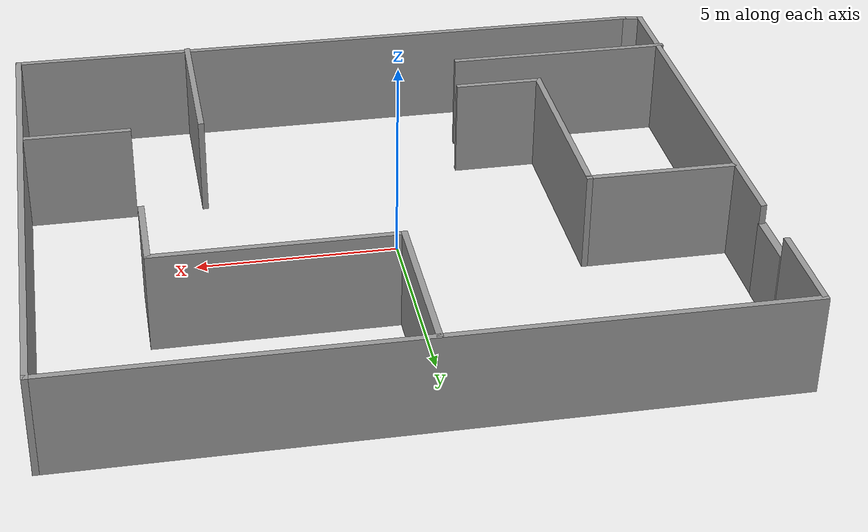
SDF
<?xml version='1.0'?>
<sdf version='1.6'>
  <model name='my_office'>
    <pose frame=''>0.443231 0.190933 0 0 -0 0</pose>
    <link name='Door_0'>
      <collision name='Door_0_Collision'>
        <geometry>
          <box>
            <size>1.46806 0.2 2</size>
          </box>
        </geometry>
        <pose frame=''>0 0 1 0 -0 0</pose>
      </collision>
      <visual name='Door_0_Visual'>
        <pose frame=''>0 0 1 0 -0 0</pose>
        <geometry>
          <box>
            <size>1.46806 0.2 2</size>
          </box>
        </geometry>
        <material>
          <script>
            <uri>file://media/materials/scripts/gazebo.material</uri>
            <name>Gazebo/Grey</name>
          </script>
        </material>
      </visual>
      <pose frame=''>-8.525 3.93257 0 0 0 -1.56325</pose>
    </link>
    <link name='Wall_10'>
      <collision name='Wall_10_Collision'>
        <geometry>
          <box>
            <size>10.25 0.15 2.5</size>
          </box>
        </geometry>
        <pose frame=''>0 0 1.25 0 -0 0</pose>
      </collision>
      <visual name='Wall_10_Visual'>
        <pose frame=''>0 0 1.25 0 -0 0</pose>
        <geometry>
          <box>
            <size>10.25 0.15 2.5</size>
          </box>
        </geometry>
        <material>
          <script>
            <uri>file://media/materials/scripts/gazebo.material</uri>
            <name>Gazebo/Grey</name>
          </script>
          <ambient>1 1 1 1</ambient>
        </material>
        <meta>
          <layer>0</layer>
        </meta>
      </visual>
      <pose frame=''>-8.50225 -1.88743 0 0 -0 1.5708</pose>
    </link>
    <link name='Wall_14'>
      <collision name='Wall_14_Collision'>
        <geometry>
          <box>
            <size>0.62569 0.15 2.5</size>
          </box>
        </geometry>
        <pose frame=''>0 0 1.25 0 -0 0</pose>
      </collision>
      <visual name='Wall_14_Visual'>
        <pose frame=''>0 0 1.25 0 -0 0</pose>
        <geometry>
          <box>
            <size>0.62569 0.15 2.5</size>
          </box>
        </geometry>
        <material>
          <script>
            <uri>file://media/materials/scripts/gazebo.material</uri>
            <name>Gazebo/Grey</name>
          </script>
          <ambient>1 1 1 1</ambient>
        </material>
        <meta>
          <layer>0</layer>
        </meta>
      </visual>
      <pose frame=''>-8.26774 -6.97711 0 0 -0 2.974</pose>
    </link>
    <link name='Wall_16'>
      <collision name='Wall_16_Collision'>
        <geometry>
          <box>
            <size>4.25 0.15 2.5</size>
          </box>
        </geometry>
        <pose frame=''>0 0 1.25 0 -0 0</pose>
      </collision>
      <visual name='Wall_16_Visual'>
        <pose frame=''>0 0 1.25 0 -0 0</pose>
        <geometry>
          <box>
            <size>4.25 0.15 2.5</size>
          </box>
        </geometry>
        <material>
          <script>
            <uri>file://media/materials/scripts/gazebo.material</uri>
            <name>Gazebo/Grey</name>
          </script>
          <ambient>1 1 1 1</ambient>
        </material>
        <meta>
          <layer>0</layer>
        </meta>
      </visual>
      <pose frame=''>4.08226 -5.03322 0 0 -0 1.5708</pose>
    </link>
    <link name='Wall_19'>
      <collision name='Wall_19_Collision'>
        <geometry>
          <box>
            <size>2.75 0.15 2.5</size>
          </box>
        </geometry>
        <pose frame=''>0 0 1.25 0 -0 0</pose>
      </collision>
      <visual name='Wall_19_Visual'>
        <pose frame=''>0 0 1.25 0 -0 0</pose>
        <geometry>
          <box>
            <size>2.75 0.15 2.5</size>
          </box>
        </geometry>
        <material>
          <script>
            <uri>file://media/materials/scripts/gazebo.material</uri>
            <name>Gazebo/Grey</name>
          </script>
          <ambient>1 1 1 1</ambient>
        </material>
        <meta>
          <layer>0</layer>
        </meta>
      </visual>
      <pose frame=''>7.20694 -2.90579 0 0 -0 3.14159</pose>
    </link>
    <link name='Wall_21'>
      <collision name='Wall_21_Collision'>
        <geometry>
          <box>
            <size>4.25 0.15 2.5</size>
          </box>
        </geometry>
        <pose frame=''>0 0 1.25 0 -0 0</pose>
      </collision>
      <visual name='Wall_21_Visual'>
        <pose frame=''>0 0 1.25 0 -0 0</pose>
        <geometry>
          <box>
            <size>4.25 0.15 2.5</size>
          </box>
        </geometry>
        <material>
          <script>
            <uri>file://media/materials/scripts/gazebo.material</uri>
            <name>Gazebo/Grey</name>
          </script>
          <ambient>1 1 1 1</ambient>
        </material>
        <meta>
          <layer>0</layer>
        </meta>
      </visual>
      <pose frame=''>-0.034669 5.03298 0 0 0 -1.5708</pose>
    </link>
    <link name='Wall_22'>
      <collision name='Wall_22_Collision'>
        <geometry>
          <box>
            <size>6 0.15 2.5</size>
          </box>
        </geometry>
        <pose frame=''>0 0 1.25 0 -0 0</pose>
      </collision>
      <visual name='Wall_22_Visual'>
        <pose frame=''>0 0 1.25 0 -0 0</pose>
        <geometry>
          <box>
            <size>6 0.15 2.5</size>
          </box>
        </geometry>
        <material>
          <script>
            <uri>file://media/materials/scripts/gazebo.material</uri>
            <name>Gazebo/Grey</name>
          </script>
          <ambient>1 1 1 1</ambient>
        </material>
        <meta>
          <layer>0</layer>
        </meta>
      </visual>
      <pose frame=''>2.89033 2.98298 0 0 -0 0</pose>
    </link>
    <link name='Wall_23'>
      <collision name='Wall_23_Collision'>
        <geometry>
          <box>
            <size>2.25 0.15 2.5</size>
          </box>
        </geometry>
        <pose frame=''>0 0 1.25 0 -0 0</pose>
      </collision>
      <visual name='Wall_23_Visual'>
        <pose frame=''>0 0 1.25 0 -0 0</pose>
        <geometry>
          <box>
            <size>2.25 0.15 2.5</size>
          </box>
        </geometry>
        <material>
          <script>
            <uri>file://media/materials/scripts/gazebo.material</uri>
            <name>Gazebo/Grey</name>
          </script>
          <ambient>1 1 1 1</ambient>
        </material>
        <meta>
          <layer>0</layer>
        </meta>
      </visual>
      <pose frame=''>5.81533 1.93298 0 0 0 -1.5708</pose>
    </link>
    <link name='Wall_25'>
      <collision name='Wall_25_Collision'>
        <geometry>
          <box>
            <size>3.75 0.15 2.5</size>
          </box>
        </geometry>
        <pose frame=''>0 0 1.25 0 -0 0</pose>
      </collision>
      <visual name='Wall_25_Visual'>
        <pose frame=''>0 0 1.25 0 -0 0</pose>
        <geometry>
          <box>
            <size>3.75 0.15 2.5</size>
          </box>
        </geometry>
        <material>
          <script>
            <uri>file://media/materials/scripts/gazebo.material</uri>
            <name>Gazebo/Grey</name>
          </script>
          <ambient>1 1 1 1</ambient>
        </material>
        <meta>
          <layer>0</layer>
        </meta>
      </visual>
      <pose frame=''>-6.6299 1.28845 0 0 -0 0</pose>
    </link>
    <link name='Wall_26'>
      <collision name='Wall_26_Collision'>
        <geometry>
          <box>
            <size>5.25 0.15 2.5</size>
          </box>
        </geometry>
        <pose frame=''>0 0 1.25 0 -0 0</pose>
      </collision>
      <visual name='Wall_26_Visual'>
        <pose frame=''>0 0 1.25 0 -0 0</pose>
        <geometry>
          <box>
            <size>5.25 0.15 2.5</size>
          </box>
        </geometry>
        <material>
          <script>
            <uri>file://media/materials/scripts/gazebo.material</uri>
            <name>Gazebo/Grey</name>
          </script>
          <ambient>1 1 1 1</ambient>
        </material>
        <meta>
          <layer>0</layer>
        </meta>
      </visual>
      <pose frame=''>-4.8299 -1.26155 0 0 0 -1.5708</pose>
    </link>
    <link name='Wall_27'>
      <collision name='Wall_27_Collision'>
        <geometry>
          <box>
            <size>2.25 0.15 2.5</size>
          </box>
        </geometry>
        <pose frame=''>0 0 1.25 0 -0 0</pose>
      </collision>
      <visual name='Wall_27_Visual'>
        <pose frame=''>0 0 1.25 0 -0 0</pose>
        <geometry>
          <box>
            <size>2.25 0.15 2.5</size>
          </box>
        </geometry>
        <material>
          <script>
            <uri>file://media/materials/scripts/gazebo.material</uri>
            <name>Gazebo/Grey</name>
          </script>
          <ambient>1 1 1 1</ambient>
        </material>
        <meta>
          <layer>0</layer>
        </meta>
      </visual>
      <pose frame=''>-3.7799 -3.81155 0 0 -0 0</pose>
    </link>
    <link name='Wall_3'>
      <collision name='Wall_3_Collision'>
        <geometry>
          <box>
            <size>16.75 0.15 2.5</size>
          </box>
        </geometry>
        <pose frame=''>0 0 1.25 0 -0 0</pose>
      </collision>
      <visual name='Wall_3_Visual'>
        <pose frame=''>0 0 1.25 0 -0 0</pose>
        <geometry>
          <box>
            <size>16.75 0.15 2.5</size>
          </box>
        </geometry>
        <material>
          <script>
            <uri>file://media/materials/scripts/gazebo.material</uri>
            <name>Gazebo/Grey</name>
          </script>
          <ambient>1 1 1 1</ambient>
        </material>
        <meta>
          <layer>0</layer>
        </meta>
      </visual>
      <pose frame=''>0.266777 -7.01678 0 0 -0 0</pose>
    </link>
    <link name='Wall_31'>
      <collision name='Wall_31_Collision'>
        <geometry>
          <box>
            <size>5.75 0.15 2.5</size>
          </box>
        </geometry>
        <pose frame=''>0 0 1.25 0 -0 0</pose>
      </collision>
      <visual name='Wall_31_Visual'>
        <pose frame=''>0 0 1.25 0 -0 0</pose>
        <geometry>
          <box>
            <size>5.75 0.15 2.5</size>
          </box>
        </geometry>
        <material>
          <script>
            <uri>file://media/materials/scripts/gazebo.material</uri>
            <name>Gazebo/Grey</name>
          </script>
          <ambient>1 1 1 1</ambient>
        </material>
        <meta>
          <layer>0</layer>
        </meta>
      </visual>
      <pose frame=''>-5.76678 -5.2361 0 0 -0 0</pose>
    </link>
    <link name='Wall_4'>
      <collision name='Wall_4_Collision'>
        <geometry>
          <box>
            <size>14.25 0.15 2.5</size>
          </box>
        </geometry>
        <pose frame=''>0 0 1.25 0 -0 0</pose>
      </collision>
      <visual name='Wall_4_Visual'>
        <pose frame=''>0 0 1.25 0 -0 0</pose>
        <geometry>
          <box>
            <size>14.25 0.15 2.5</size>
          </box>
        </geometry>
        <material>
          <script>
            <uri>file://media/materials/scripts/gazebo.material</uri>
            <name>Gazebo/Grey</name>
          </script>
          <ambient>1 1 1 1</ambient>
        </material>
        <meta>
          <layer>0</layer>
        </meta>
      </visual>
      <pose frame=''>8.56678 0.033215 0 0 -0 1.5708</pose>
    </link>
    <link name='Wall_5'>
      <collision name='Wall_5_Collision'>
        <geometry>
          <box>
            <size>17.25 0.15 2.5</size>
          </box>
        </geometry>
        <pose frame=''>0 0 1.25 0 -0 0</pose>
      </collision>
      <visual name='Wall_5_Visual'>
        <pose frame=''>0 0 1.25 0 -0 0</pose>
        <geometry>
          <box>
            <size>17.25 0.15 2.5</size>
          </box>
        </geometry>
        <material>
          <script>
            <uri>file://media/materials/scripts/gazebo.material</uri>
            <name>Gazebo/Grey</name>
          </script>
          <ambient>1 1 1 1</ambient>
        </material>
        <meta>
          <layer>0</layer>
        </meta>
      </visual>
      <pose frame=''>0.016777 7.08322 0 0 -0 3.14159</pose>
    </link>
    <link name='Wall_6'>
      <collision name='Wall_6_Collision'>
        <geometry>
          <box>
            <size>2.5 0.15 2.5</size>
          </box>
        </geometry>
        <pose frame=''>0 0 1.25 0 -0 0</pose>
      </collision>
      <visual name='Wall_6_Visual'>
        <pose frame=''>0 0 1.25 0 -0 0</pose>
        <geometry>
          <box>
            <size>2.5 0.15 2.5</size>
          </box>
        </geometry>
        <material>
          <script>
            <uri>file://media/materials/scripts/gazebo.material</uri>
            <name>Gazebo/Grey</name>
          </script>
          <ambient>1 1 1 1</ambient>
        </material>
        <meta>
          <layer>0</layer>
        </meta>
      </visual>
      <pose frame=''>-8.53322 5.90822 0 0 0 -1.5708</pose>
    </link>
    <static>1</static>
  </model>
</sdf>
